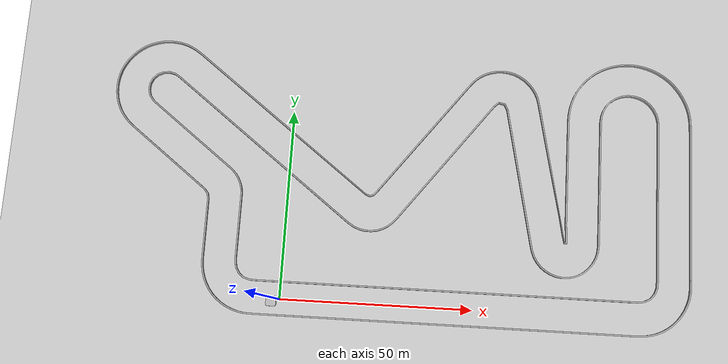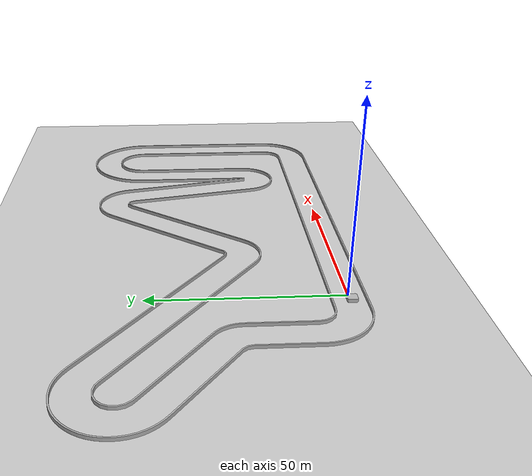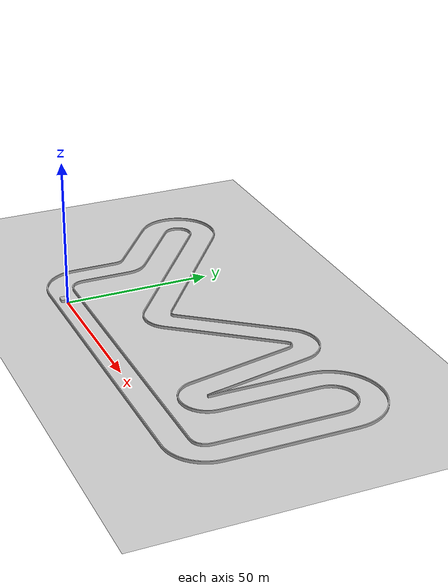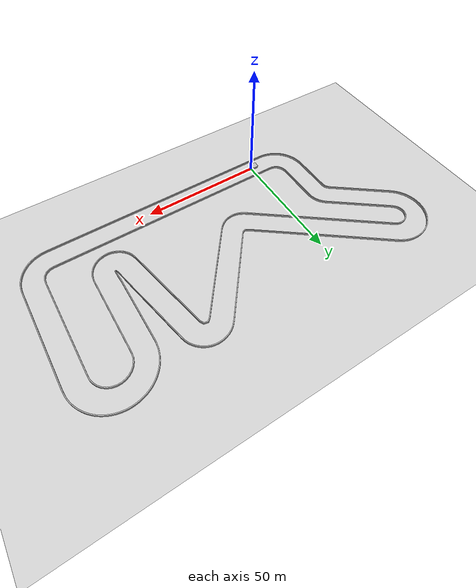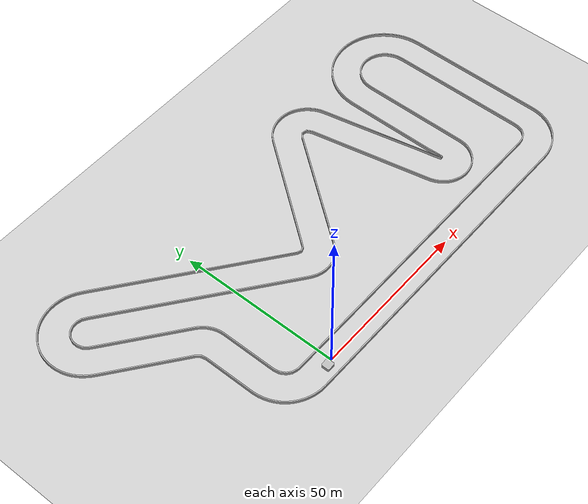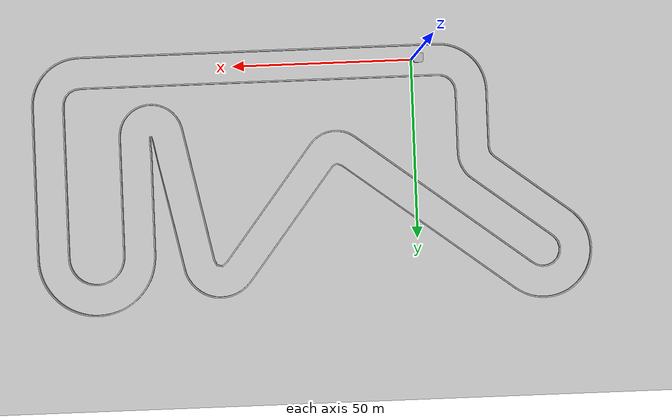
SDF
<sdf version="1.6">
    <world name="EV Grand Prix">
        <scene>
            <ambient>1 1 1 1</ambient>
            <background>0.7 0.7 0.7 1</background>
            <shadows>true</shadows>
            <grid>false</grid>
            <origin_visual>false</origin_visual>
            <sky>
                <clouds>
                    <speed>12</speed>
                </clouds>
            </sky>
        </scene>
        <include>
            <uri>model://sun</uri>
        </include>
        <include>
            <uri>model://ground_plane</uri>
            <name>ground_plane0</name>
            <pose>0 20 0 0 0 0 0</pose>
        </include>
        <include>
            <uri>model://ground_plane</uri>
            <name>ground_plane1</name>
            <pose>50 20 0 0 0 0 0</pose>

        </include>
	    <include>
            <uri>model://ground_plane</uri>
            <name>ground_plane2</name>
            <pose>100 20 0 0 0 0 0</pose>
        </include>
        <include>
            <uri>model://EVGPTrack2</uri>
	        <pose>-50 70 0 0 0 0</pose>
        </include>
    <model name="turtlebot3_waffle">
      <pose>-2.0 -0.5 0.01 0.0 0.0 0.0</pose>

      <link name="base_footprint"/>

      <link name="base_link">

        <inertial>
          <pose>-0.064 0 0.048 0 0 0</pose>
          <inertia>
            <ixx>0.001</ixx>
            <ixy>0.000</ixy>
            <ixz>0.000</ixz>
            <iyy>0.001</iyy>
            <iyz>0.000</iyz>
            <izz>0.001</izz>
          </inertia>
          <mass>1.0</mass>
        </inertial>

        <collision name="base_collision">
          <pose>-0.064 0 0.048 0 0 0</pose>
          <geometry>
            <box>
              <size>0.265 0.265 0.089</size>
            </box>
          </geometry>
        </collision>

        <visual name="base_visual">
          <pose>-0.064 0 0 0 0 0</pose>
          <geometry>
            <mesh>
              <uri>model://turtlebot3_common/meshes/waffle_base.dae</uri>
              <scale>0.01 0.01 0.01</scale>
            </mesh>
          </geometry>
        </visual>
      </link>

      <link name="imu_link">
        <sensor name="tb3_imu" type="imu">
          <always_on>true</always_on>
          <update_rate>200</update_rate>
          <imu>
            <angular_velocity>
              <x>
                <noise type="gaussian">
                  <mean>0.0</mean>
                  <stddev>2e-4</stddev>
                </noise>
              </x>
              <y>
                <noise type="gaussian">
                  <mean>0.0</mean>
                  <stddev>2e-4</stddev>
                </noise>
              </y>
              <z>
                <noise type="gaussian">
                  <mean>0.0</mean>
                  <stddev>2e-4</stddev>
                </noise>
              </z>
            </angular_velocity>
            <linear_acceleration>
              <x>
                <noise type="gaussian">
                  <mean>0.0</mean>
                  <stddev>1.7e-2</stddev>
                </noise>
              </x>
              <y>
                <noise type="gaussian">
                  <mean>0.0</mean>
                  <stddev>1.7e-2</stddev>
                </noise>
              </y>
              <z>
                <noise type="gaussian">
                  <mean>0.0</mean>
                  <stddev>1.7e-2</stddev>
                </noise>
              </z>
            </linear_acceleration>
          </imu>
          <plugin name="turtlebot3_imu" filename="libgazebo_ros_imu_sensor.so">
            <initial_orientation_as_reference>false</initial_orientation_as_reference>
            <ros>
              <remapping>~/out:=imu</remapping>
            </ros>
          </plugin>
        </sensor>
      </link>

      <link name="base_scan">
        <inertial>
          <pose>-0.052 0 0.111 0 0 0</pose>
          <inertia>
            <ixx>0.001</ixx>
            <ixy>0.000</ixy>
            <ixz>0.000</ixz>
            <iyy>0.001</iyy>
            <iyz>0.000</iyz>
            <izz>0.001</izz>
          </inertia>
          <mass>0.125</mass>
        </inertial>

        <collision name="lidar_sensor_collision">
          <pose>-0.052 0 0.111 0 0 0</pose>
          <geometry>
            <cylinder>
              <radius>0.0508</radius>
              <length>0.055</length>
            </cylinder>
          </geometry>
        </collision>

        <visual name="lidar_sensor_visual">
          <pose>-0.064 0 0.121 0 0 0</pose>
          <geometry>
            <mesh>
              <uri>model://turtlebot3_common/meshes/lds.dae</uri>
              <scale>0.001 0.001 0.001</scale>
            </mesh>
          </geometry>
        </visual>

        <sensor name="hls_lfcd_lds" type="ray">
          <always_on>true</always_on>
          <visualize>true</visualize>
          <pose>-0.064 0 0.121 0 0 0</pose>
          <update_rate>5</update_rate>
          <ray>
            <scan>
              <horizontal>
                <samples>360</samples>
                <resolution>1.000000</resolution>
                <min_angle>0.000000</min_angle>
                <max_angle>6.280000</max_angle>
              </horizontal>
            </scan>
            <range>
              <min>0.120000</min>
              <max>18</max>
              <resolution>0.015000</resolution>
            </range>
            <noise>
              <type>gaussian</type>
              <mean>0.0</mean>
              <stddev>0.01</stddev>
            </noise>
          </ray>
          <plugin name="turtlebot3_laserscan" filename="libgazebo_ros_ray_sensor.so">
            <ros>
                <remapping>~/out:=scan</remapping>
            </ros>
            <output_type>sensor_msgs/LaserScan</output_type>
            <frame_name>base_scan</frame_name>
          </plugin>
        </sensor>
      </link>

      <link name="wheel_left_link">

        <inertial>
          <pose>0.0 0.144 0.023 -1.57 0 0</pose>
          <inertia>
            <ixx>0.001</ixx>
            <ixy>0.000</ixy>
            <ixz>0.000</ixz>
            <iyy>0.001</iyy>
            <iyz>0.000</iyz>
            <izz>0.001</izz>
          </inertia>
          <mass>0.1</mass>
        </inertial>

        <collision name="wheel_left_collision">
          <pose>0.0 0.144 0.023 -1.57 0 0</pose>
          <geometry>
            <cylinder>
              <radius>0.033</radius>
              <length>0.018</length>
            </cylinder>
          </geometry>
          <surface>
            <!-- This friction pamareter don't contain reliable data!! -->
            <friction>
              <ode>
                <mu>100000.0</mu>
                <mu2>100000.0</mu2>
                <fdir1>0 0 0</fdir1>
                <slip1>0.0</slip1>
                <slip2>0.0</slip2>
              </ode>
            </friction>
            <contact>
              <ode>
                <soft_cfm>0</soft_cfm>
                <soft_erp>0.2</soft_erp>
                <kp>1e+5</kp>
                <kd>1</kd>
                <max_vel>0.01</max_vel>
                <min_depth>0.001</min_depth>
              </ode>
            </contact>
          </surface>
        </collision>

        <visual name="wheel_left_visual">
          <pose>0.0 0.144 0.023 0 0 0</pose>
          <geometry>
            <mesh>
              <uri>model://turtlebot3_common/meshes/tire.dae</uri>
              <scale>0.001 0.001 0.001</scale>
            </mesh>
          </geometry>
        </visual>
      </link>

      <link name="wheel_right_link">

        <inertial>
          <pose>0.0 -0.144 0.023 -1.57 0 0</pose>
          <inertia>
            <ixx>0.001</ixx>
            <ixy>0.000</ixy>
            <ixz>0.000</ixz>
            <iyy>0.001</iyy>
            <iyz>0.000</iyz>
            <izz>0.001</izz>
          </inertia>
          <mass>0.1</mass>
        </inertial>

        <collision name="wheel_right_collision">
          <pose>0.0 -0.144 0.023 -1.57 0 0</pose>
          <geometry>
            <cylinder>
              <radius>0.033</radius>
              <length>0.018</length>
            </cylinder>
          </geometry>
          <surface>
            <!-- This friction pamareter don't contain reliable data!! -->
            <friction>
              <ode>
                <mu>100000.0</mu>
                <mu2>100000.0</mu2>
                <fdir1>0 0 0</fdir1>
                <slip1>0.0</slip1>
                <slip2>0.0</slip2>
              </ode>
            </friction>
            <contact>
              <ode>
                <soft_cfm>0</soft_cfm>
                <soft_erp>0.2</soft_erp>
                <kp>1e+5</kp>
                <kd>1</kd>
                <max_vel>0.01</max_vel>
                <min_depth>0.001</min_depth>
              </ode>
            </contact>
          </surface>
        </collision>

        <visual name="wheel_right_visual">
          <pose>0.0 -0.144 0.023 0 0 0</pose>
          <geometry>
            <mesh>
              <uri>model://turtlebot3_common/meshes/tire.dae</uri>
              <scale>0.001 0.001 0.001</scale>
            </mesh>
          </geometry>
        </visual>
      </link>

      <link name='caster_back_right_link'>
        <pose>-0.177 -0.064 -0.004 0 0 0</pose>
        <inertial>
          <mass>0.001</mass>
          <inertia>
            <ixx>0.00001</ixx>
            <ixy>0.000</ixy>
            <ixz>0.000</ixz>
            <iyy>0.00001</iyy>
            <iyz>0.000</iyz>
            <izz>0.00001</izz>
          </inertia>
        </inertial>
        <collision name='collision'>
          <geometry>
            <sphere>
              <radius>0.005000</radius>
            </sphere>
          </geometry>
          <surface>
            <contact>
              <ode>
                <soft_cfm>0</soft_cfm>
                <soft_erp>0.2</soft_erp>
                <kp>1e+5</kp>
                <kd>1</kd>
                <max_vel>0.01</max_vel>
                <min_depth>0.001</min_depth>
              </ode>
            </contact>
          </surface>
        </collision>
      </link>

      <link name='caster_back_left_link'>
        <pose>-0.177 0.064 -0.004 0 0 0</pose>
        <inertial>
          <mass>0.001</mass>
          <inertia>
            <ixx>0.00001</ixx>
            <ixy>0.000</ixy>
            <ixz>0.000</ixz>
            <iyy>0.00001</iyy>
            <iyz>0.000</iyz>
            <izz>0.00001</izz>
          </inertia>
        </inertial>
        <collision name='collision'>
          <geometry>
            <sphere>
              <radius>0.005000</radius>
            </sphere>
          </geometry>
          <surface>
            <contact>
              <ode>
                <soft_cfm>0</soft_cfm>
                <soft_erp>0.2</soft_erp>
                <kp>1e+5</kp>
                <kd>1</kd>
                <max_vel>0.01</max_vel>
                <min_depth>0.001</min_depth>
              </ode>
            </contact>
          </surface>
        </collision>
      </link>

      <link name="camera_link">
        <inertial>
          <pose>0.069 -0.047 0.107 0 0 0</pose>
          <inertia>
            <ixx>0.001</ixx>
            <ixy>0.000</ixy>
            <ixz>0.000</ixz>
            <iyy>0.001</iyy>
            <iyz>0.000</iyz>
            <izz>0.001</izz>
          </inertia>
          <mass>0.035</mass>
        </inertial>
        <collision name="collision">
          <pose>0 0.047 -0.005 0 0 0</pose>
          <geometry>
            <box>
              <size>0.008 0.130 0.022</size>
            </box>
          </geometry>
        </collision>

        <pose>0.069 -0.047 0.107 0 0 0</pose>

        <sensor name="intel_realsense_r200_depth" type="depth">
          <always_on>1</always_on>
          <update_rate>5</update_rate>
          <pose>0.064 -0.047 0.107 0 0 0</pose>
          <camera name="realsense_depth_camera">
          </camera>
          <plugin name="intel_realsense_r200_depth_driver" filename="libgazebo_ros_camera.so">
            <ros>
            </ros>
            <camera_name>intel_realsense_r200_depth</camera_name>
            <frame_name>camera_depth_frame</frame_name>
            <hack_baseline>0.07</hack_baseline>
            <min_depth>0.001</min_depth>
            <max_depth>5.0</max_depth>
          </plugin>
        </sensor>

        <collision name="collision">
          <pose>0 0.047 -0.005 0 0 0</pose>
          <geometry>
            <box>
              <size>0.008 0.130 0.022</size>
            </box>
          </geometry>
        </collision>
        <pose>0.069 -0.047 0.107 0 0 0</pose>
      </link>

      <joint name="base_joint" type="fixed">
        <parent>base_footprint</parent>
        <child>base_link</child>
        <pose>0.0 0.0 0.010 0 0 0</pose>
      </joint>

      <joint name="wheel_left_joint" type="revolute">
        <parent>base_link</parent>
        <child>wheel_left_link</child>
        <pose>0.0 0.144 0.023 -1.57 0 0</pose>
        <axis>
          <xyz>0 0 1</xyz>
        </axis>
      </joint>

      <joint name="wheel_right_joint" type="revolute">
        <parent>base_link</parent>
        <child>wheel_right_link</child>
        <pose>0.0 -0.144 0.023 -1.57 0 0</pose>
        <axis>
          <xyz>0 0 1</xyz>
        </axis>
      </joint>

      <joint name='caster_back_right_joint' type='ball'>
        <parent>base_link</parent>
        <child>caster_back_right_link</child>
      </joint>

      <joint name='caster_back_left_joint' type='ball'>
        <parent>base_link</parent>
        <child>caster_back_left_link</child>
      </joint>

      <joint name="lidar_joint" type="fixed">
        <parent>base_link</parent>
        <child>base_scan</child>
        <pose>-0.064 0 0.121 0 0 0</pose>
        <axis>
          <xyz>0 0 1</xyz>
        </axis>
      </joint>

      <joint name="camera_joint" type="fixed">
        <parent>base_link</parent>
        <child>camera_link</child>
        <pose>0.064 -0.065 0.094 0 0 0</pose>
        <axis>
          <xyz>0 0 1</xyz>
        </axis>
      </joint>

      <joint name="camera_rgb_joint" type="fixed">
        <parent>camera_link</parent>
        <child>camera_rgb_frame</child>
        <pose>0.005 0.018 0.013 0 0 0</pose>
        <axis>
          <xyz>0 0 1</xyz>
        </axis>
      </joint>

      <plugin name="turtlebot3_diff_drive" filename="libgazebo_ros_diff_drive.so">

        <ros>
        </ros>

        <update_rate>30</update_rate>

        <!-- wheels -->
        <left_joint>wheel_left_joint</left_joint>
        <right_joint>wheel_right_joint</right_joint>

        <!-- kinematics -->
        <wheel_separation>0.287</wheel_separation>
        <wheel_diameter>0.066</wheel_diameter>

        <!-- limits -->
        <max_wheel_torque>20</max_wheel_torque>
        <max_wheel_acceleration>1.0</max_wheel_acceleration>

        <command_topic>cmd_vel</command_topic>

        <!-- output -->
        <publish_odom>true</publish_odom>
        <publish_odom_tf>true</publish_odom_tf>
        <publish_wheel_tf>false</publish_wheel_tf>

        <odometry_topic>odom</odometry_topic>
        <odometry_frame>odom</odometry_frame>
        <robot_base_frame>base_footprint</robot_base_frame>

      </plugin>

      <plugin name="turtlebot3_joint_state" filename="libgazebo_ros_joint_state_publisher.so">
        <ros>
            <remapping>~/out:=joint_states</remapping>
        </ros>
        <update_rate>30</update_rate>
        <joint_name>wheel_left_joint</joint_name>
        <joint_name>wheel_right_joint</joint_name>
      </plugin>

    </model>
    </world>
</sdf>

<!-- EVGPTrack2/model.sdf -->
<sdf version='1.6'>
    <model name='EVGPTrack1'>
        <link name='inner_boundary'>
            <visual name='visual'>
                <geometry>
                    <mesh>
                        <uri>model://EVGPTrack2/evgp_2020_layout_inner.stl</uri>
                        <scale>1 1 2</scale>
                    </mesh>
                </geometry>
                <material>
                    <ambient>0.7 0.7 0.7 1</ambient>
                    <diffuse>0.7 0.7 0.7 1</diffuse>
                </material>
            </visual>
            <collision name='collision'>
                <geometry>
                    <mesh>
                        <uri>model://EVGPTrack2/evgp_2020_layout_inner.stl</uri>
                        <scale>1 1 2</scale>
                    </mesh>
                </geometry>
                <surface>
                    <contact>
                        <collide_bitmask>0x1</collide_bitmask>
                    </contact>
                </surface>
            </collision>
        </link>

        <link name='outer_boundary'>
            <visual name='visual'>
                <geometry>
                    <mesh>
                        <uri>model://EVGPTrack2/evgp_2020_layout_outer.stl</uri>
                        <scale>1 1 2</scale>
                    </mesh>
                </geometry>
                <material>
                    <ambient>0.7 0.7 0.7 1</ambient>
                    <diffuse>0.7 0.7 0.7 1</diffuse>
                </material>
            </visual>
            <collision name='collision'>
                <geometry>
                    <mesh>
                        <uri>model://EVGPTrack2/evgp_2020_layout_outer.stl</uri>
                        <scale>1 1 2</scale>
                    </mesh>
                </geometry>
                <surface>
                    <contact>
                        <collide_bitmask>0x1</collide_bitmask>
                    </contact>
                </surface>
            </collision>
        </link>

        <static>true</static>
        <allow_auto_disable>0</allow_auto_disable>
    </model>
</sdf>
